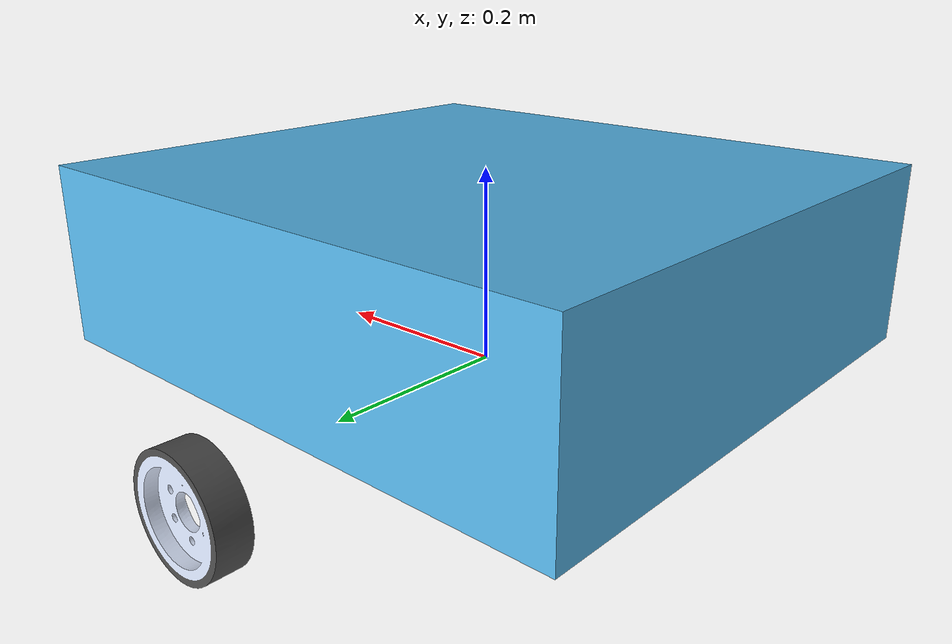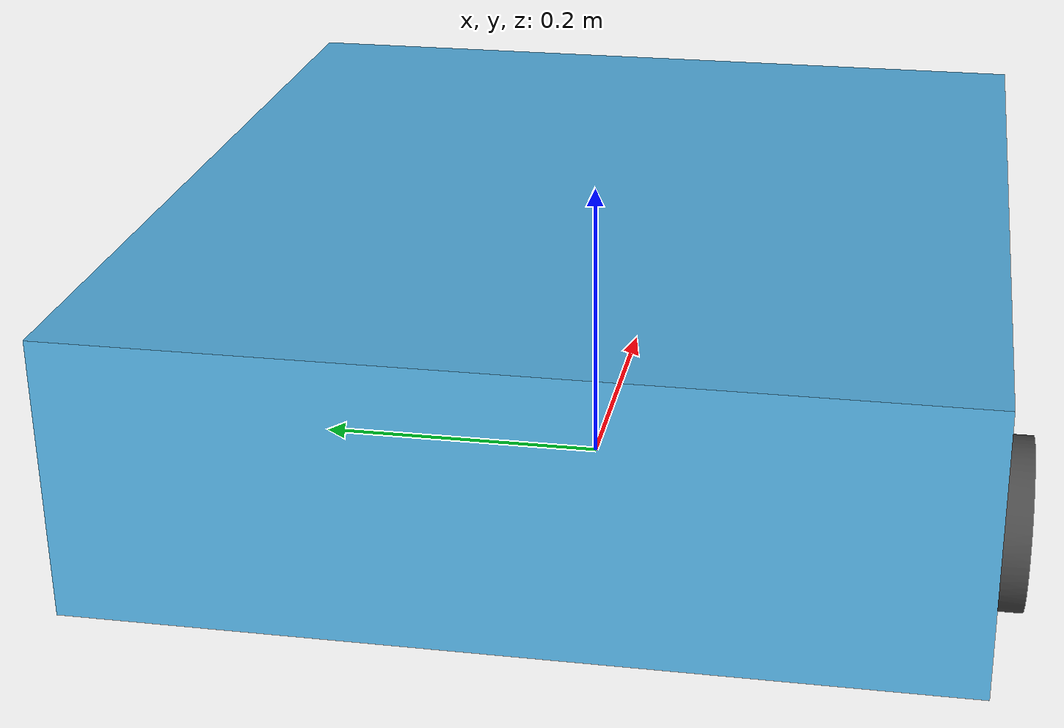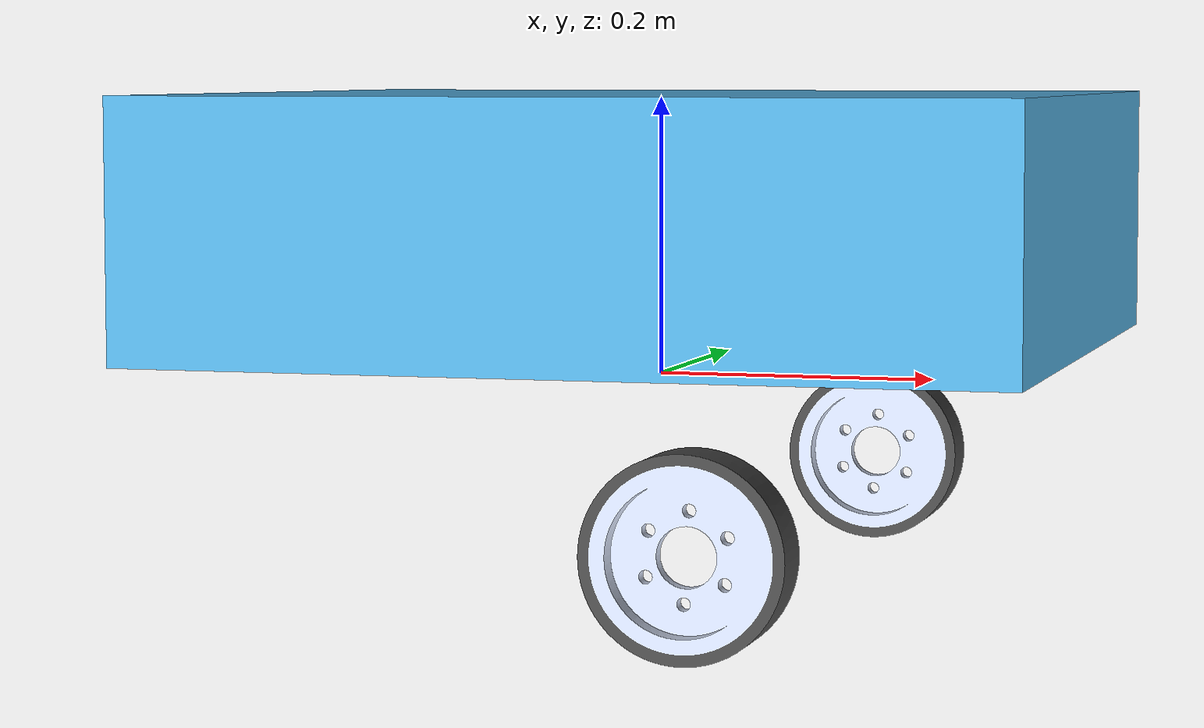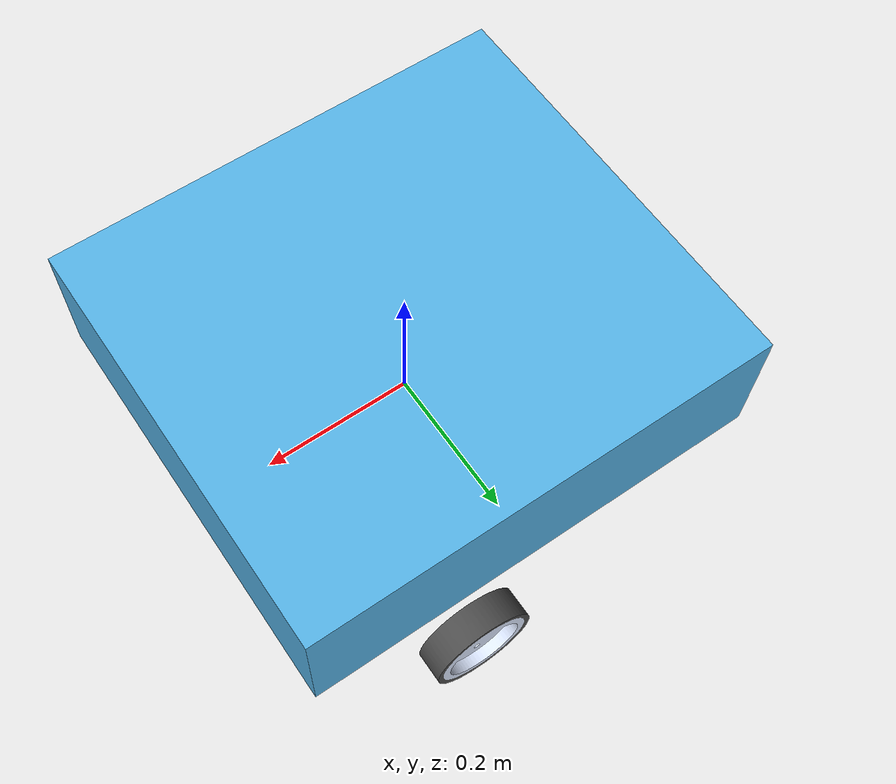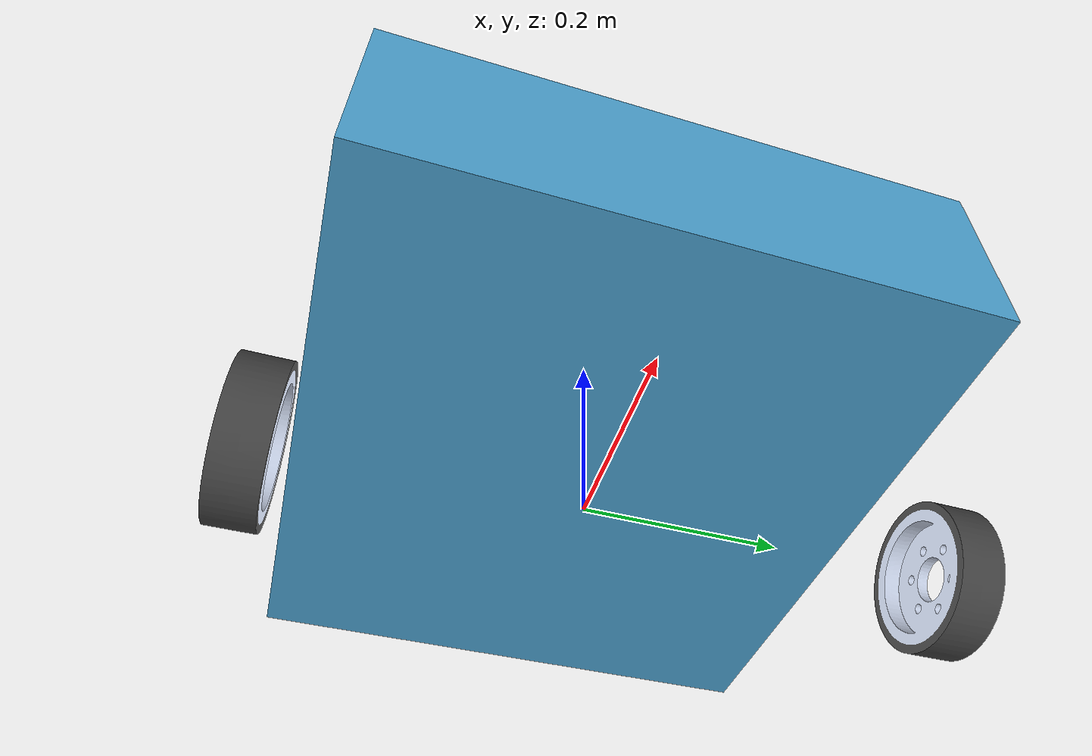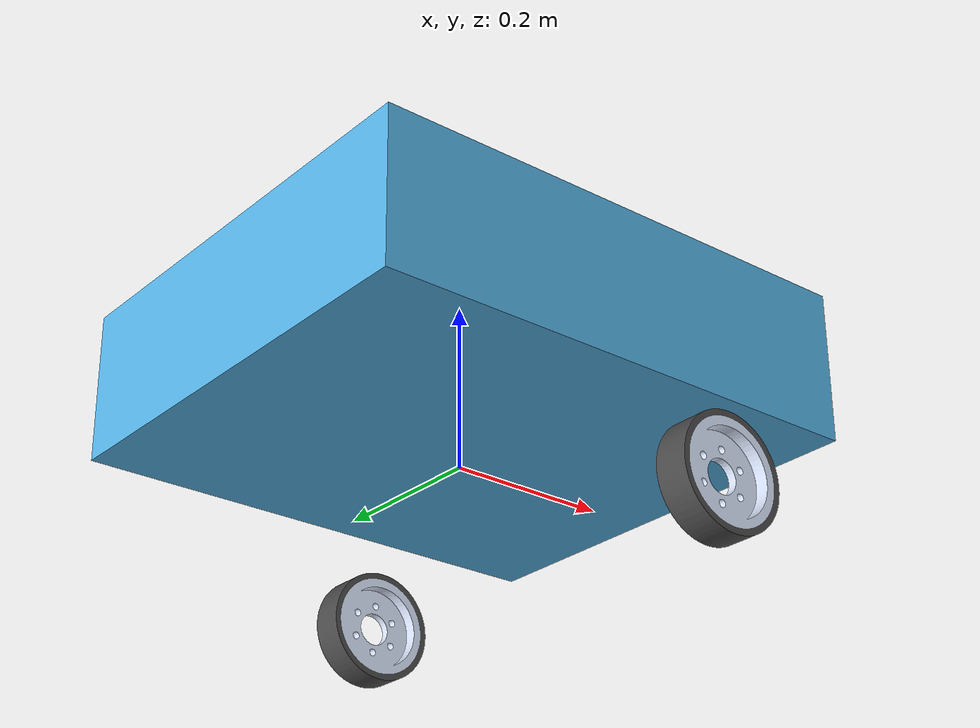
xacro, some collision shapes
<?xml version="1.0" ?>
<robot name="robozinho" xmlns:xacro="http://ros.org/wiki/xacro">

  <!-- ****************** ROBOT CONSTANTS *******************************  -->
  <!-- Define the size of the robot's main chassis in meters -->
  <xacro:property name="base_width" value="0.557"/>
  <xacro:property name="base_length" value="0.617"/>
  <xacro:property name="base_height" value="0.182"/>

  <!-- Define the shape of the robot's two back wheels in meters -->
  <xacro:property name="wheel_radius" value="0.14"/>
  <xacro:property name="wheel_width" value="0.04"/>

  <!-- x-axis points forward, y-axis points to left, z-axis points upwards -->
  <!-- Define the gap between the wheel and chassis along y-axis in meters -->
  <xacro:property name="wheel_ygap" value="0.035"/>

  <!-- Position the wheels along the z-axis -->
  <xacro:property name="wheel_zoff" value="0.05"/>

  <!-- Position the wheels along the x-axis -->
  <xacro:property name="wheel_xoff" value="0.221"/>

  <!-- ********************** ROBOT BASE *********************************  -->
  <link name="base_link">
    </link>

    <joint name="base_joint" type="fixed">
      <parent link="base_link"/>
      <child link="chassis" />
      <origin xyz="0.0 0.0 0.0118" rpy="0 0 3.14"/>
    </joint>

    <link name="chassis">
      <visual>
        <origin xyz="0  0  0.0118" rpy="0 0 3.14"/>
        <geometry>
          <mesh filename="file:////home/renata_a/workspace/src/rocket/meshes/EST_estrutura_m3.dae" />
        </geometry>
      </visual>

      <collision>
          <origin rpy="0  0  3.14" xyz="0  0  0.1" />
          <geometry>
              <box size="${base_length} ${base_width} ${base_height}"/>
          </geometry>
      </collision>

      <inertial>
          <origin xyz="0  0  0.0118" rpy="0  0  3.14"/>
          <mass value="2.4"/>
          <inertia ixx="0.019995" ixy="0.0" ixz="0.0"
                iyy="0.019995" iyz="0.0"
                izz="0.03675" />
      </inertial>

    </link>

  <!-- *********************** DRIVE WHEELS ******************************  -->

  <xacro:macro name="wheel" params="prefix pos_X pos_Y pos_Z pos_r pos_p pos_y">

    <link name="${prefix}">
      <visual name="${prefix}_visual">
        <origin xyz="0 0 0" rpy="0 0 0"/>
        <geometry>
            <mesh filename="file:////home/renata_a/workspace/src/rocket/meshes/M_rodatrativa.dae" scale="1 1 1"/>
        </geometry>
      </visual>

      <collision name="${prefix}_collision">
        <origin xyz="0 0 0" rpy="0 0 0"/>
        <geometry>
          <mesh filename="file:////home/renata_a/workspace/src/rocket/meshes/M_rodatrativa.dae" scale="1 1 1"/>
        </geometry>
      </collision>

      <inertial>
        <mass value="1" />
        <origin rpy="0 0 0" xyz="0 0 0" />
        <inertia ixx="0.001" ixy="0.0" ixz="0.0"
                iyy="0.001" iyz="0.0"
                izz="0.001" />
      </inertial>

    </link>

    <joint name="joint_${prefix}" type="revolute">
            <parent link="chassis" />
            <child link="${prefix}" />
            <origin rpy="${pos_r} ${pos_p} ${pos_y}" xyz="${pos_X} ${pos_Y} ${pos_Z}" />
            <axis rpy="0 0 0" xyz="0 1 0"/>
            <limit effort="10000" velocity="1000"/>
    </joint>
   </xacro:macro>

  <xacro:wheel prefix="left_wheel" pos_X="-0.098795" pos_Y="-0.296755" pos_Z="-0.09915" pos_r="0" pos_p="0" pos_y="1.57" />
  <xacro:wheel prefix="right_wheel" pos_X="-0.098795" pos_Y="0.296395" pos_Z="-0.09915" pos_r="0" pos_p="0" pos_y="1.57" />

  <!-- *********************** TRAY ******************************  -->

  <link name="tray">
      <visual name="tray_visual">
        <origin xyz="0 0 0.0118" rpy="0 0 0"/>
        <geometry>
            <mesh filename="file:////home/renata_a/workspace/src/rocket/meshes/ELV_conjuntocompleto.dae" scale="1 1 1"/>
        </geometry>
      </visual>

      <collision name="tray_collision">
        <origin xyz="0 0 0" rpy="0 0 0"/>
        <geometry>
          <mesh filename="file:////home/renata_a/workspace/src/rocket/meshes/ELV_conjuntocompleto.dae" scale="1 1 1"/>
        </geometry>
      </collision>

      <inertial>
        <mass value="0.5" />
        <origin rpy="0 0 0" xyz="0 0 0" />
        <inertia ixx="0.0" ixy="0.0" ixz="0.0"
                iyy="0.0" iyz="0.0"
                izz="0.0" />
      </inertial>
  </link>

  <joint name="joint_tray" type="fixed">
            <parent link="chassis" />
            <child link="tray" />
            <origin rpy="0 0 0" xyz="0 0 0" />
    </joint>

</robot>
